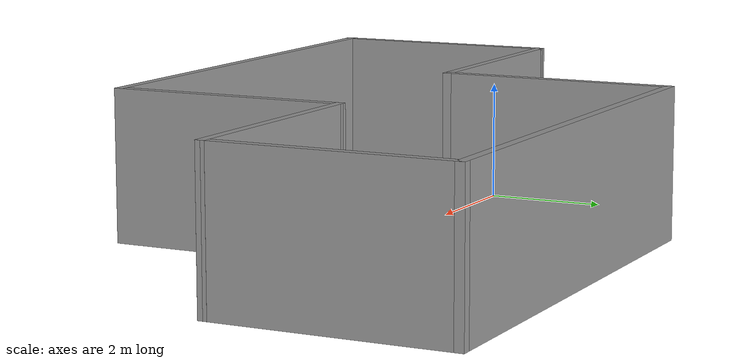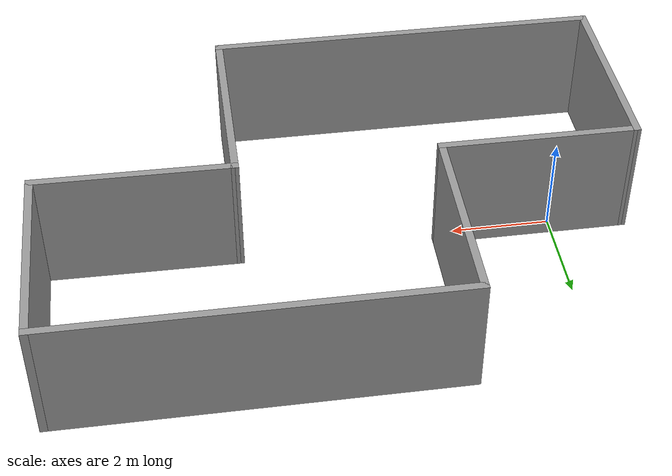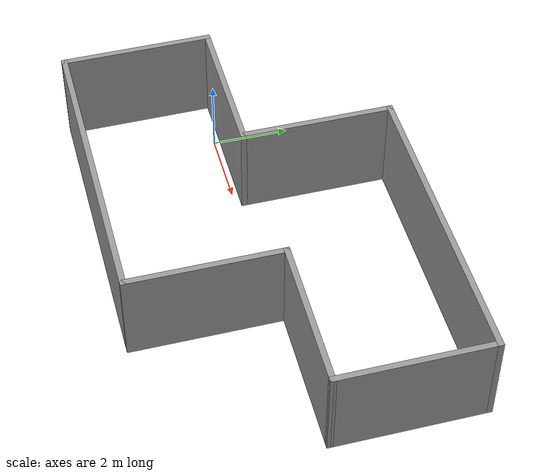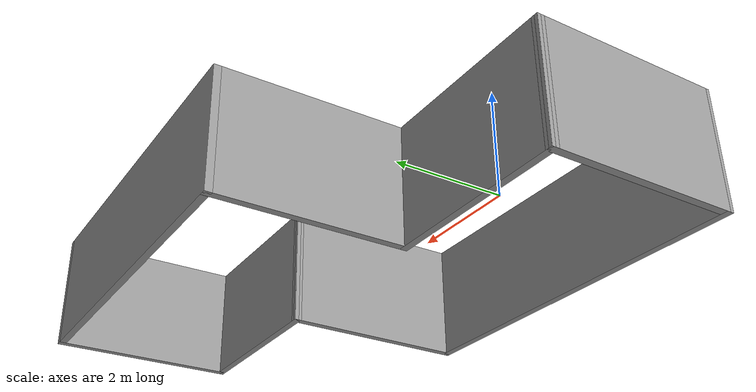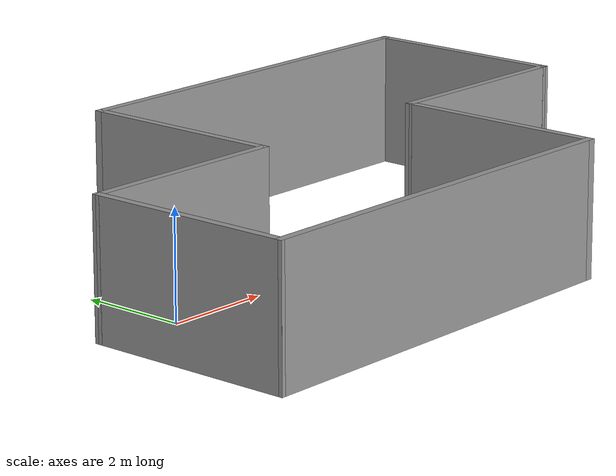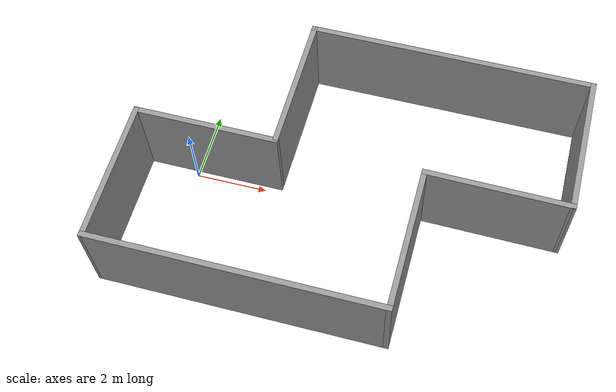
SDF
<?xml version='1.0'?>
<sdf version='1.6'>
  <model name='z_room'>
    <pose frame=''>4.36686 0.219743 0 0 -0 0</pose>
    <link name='Wall_0'>
      <collision name='Wall_0_Collision'>
        <geometry>
          <box>
            <size>8 0.15 2.5</size>
          </box>
        </geometry>
        <pose frame=''>0 0 1.25 0 -0 0</pose>
      </collision>
      <visual name='Wall_0_Visual'>
        <pose frame=''>0 0 1.25 0 -0 0</pose>
        <geometry>
          <box>
            <size>8 0.15 2.5</size>
          </box>
        </geometry>
        <material>
          <script>
            <uri>file://media/materials/scripts/gazebo.material</uri>
            <name>Gazebo/Grey</name>
          </script>
          <ambient>1 1 1 1</ambient>
        </material>
      </visual>
      <pose frame=''>-1.91186 -3.84974 0 0 -0 0</pose>
    </link>
    <link name='Wall_1'>
      <collision name='Wall_1_Collision'>
        <geometry>
          <box>
            <size>4.04023 0.15 2.5</size>
          </box>
        </geometry>
        <pose frame=''>0 0 1.25 0 -0 0</pose>
      </collision>
      <visual name='Wall_1_Visual'>
        <pose frame=''>0 0 1.25 0 -0 0</pose>
        <geometry>
          <box>
            <size>4.04023 0.15 2.5</size>
          </box>
        </geometry>
        <material>
          <script>
            <uri>file://media/materials/scripts/gazebo.material</uri>
            <name>Gazebo/Grey</name>
          </script>
          <ambient>1 1 1 1</ambient>
        </material>
      </visual>
      <pose frame=''>2.01314 -1.90463 0 0 -0 1.5708</pose>
    </link>
    <link name='Wall_10'>
      <collision name='Wall_10_Collision'>
        <geometry>
          <box>
            <size>4.02645 0.15 2.5</size>
          </box>
        </geometry>
        <pose frame=''>0 0 1.25 0 -0 0</pose>
      </collision>
      <visual name='Wall_10_Visual'>
        <pose frame=''>0 0 1.25 0 -0 0</pose>
        <geometry>
          <box>
            <size>4.02645 0.15 2.5</size>
          </box>
        </geometry>
        <material>
          <script>
            <uri>file://media/materials/scripts/gazebo.material</uri>
            <name>Gazebo/Grey</name>
          </script>
          <ambient>1 1 1 1</ambient>
        </material>
      </visual>
      <pose frame=''>-3.92508 0.000257 0 0 -0 3.14159</pose>
    </link>
    <link name='Wall_13'>
      <collision name='Wall_13_Collision'>
        <geometry>
          <box>
            <size>4.00009 0.15 2.5</size>
          </box>
        </geometry>
        <pose frame=''>0 0 1.25 0 -0 0</pose>
      </collision>
      <visual name='Wall_13_Visual'>
        <pose frame=''>0 0 1.25 0 -0 0</pose>
        <geometry>
          <box>
            <size>4.00009 0.15 2.5</size>
          </box>
        </geometry>
        <material>
          <script>
            <uri>file://media/materials/scripts/gazebo.material</uri>
            <name>Gazebo/Grey</name>
          </script>
          <ambient>1 1 1 1</ambient>
        </material>
      </visual>
      <pose frame=''>-5.85008 -1.92474 0 0 0 -1.56393</pose>
    </link>
    <link name='Wall_3'>
      <collision name='Wall_3_Collision'>
        <geometry>
          <box>
            <size>4 0.15 2.5</size>
          </box>
        </geometry>
        <pose frame=''>0 0 1.25 0 -0 0</pose>
      </collision>
      <visual name='Wall_3_Visual'>
        <pose frame=''>0 0 1.25 0 -0 0</pose>
        <geometry>
          <box>
            <size>4 0.15 2.5</size>
          </box>
        </geometry>
        <material>
          <script>
            <uri>file://media/materials/scripts/gazebo.material</uri>
            <name>Gazebo/Grey</name>
          </script>
          <ambient>1 1 1 1</ambient>
        </material>
      </visual>
      <pose frame=''>3.93815 0.02037 0 0 0 -0.010448</pose>
    </link>
    <link name='Wall_7'>
      <collision name='Wall_7_Collision'>
        <geometry>
          <box>
            <size>4 0.15 2.5</size>
          </box>
        </geometry>
        <pose frame=''>0 0 1.25 0 -0 0</pose>
      </collision>
      <visual name='Wall_7_Visual'>
        <pose frame=''>0 0 1.25 0 -0 0</pose>
        <geometry>
          <box>
            <size>4 0.15 2.5</size>
          </box>
        </geometry>
        <material>
          <script>
            <uri>file://media/materials/scripts/gazebo.material</uri>
            <name>Gazebo/Grey</name>
          </script>
          <ambient>1 1 1 1</ambient>
        </material>
      </visual>
      <pose frame=''>5.86314 1.92526 0 0 -0 1.5708</pose>
    </link>
    <link name='Wall_8'>
      <collision name='Wall_8_Collision'>
        <geometry>
          <box>
            <size>8 0.15 2.5</size>
          </box>
        </geometry>
        <pose frame=''>0 0 1.25 0 -0 0</pose>
      </collision>
      <visual name='Wall_8_Visual'>
        <pose frame=''>0 0 1.25 0 -0 0</pose>
        <geometry>
          <box>
            <size>8 0.15 2.5</size>
          </box>
        </geometry>
        <material>
          <script>
            <uri>file://media/materials/scripts/gazebo.material</uri>
            <name>Gazebo/Grey</name>
          </script>
          <ambient>1 1 1 1</ambient>
        </material>
      </visual>
      <pose frame=''>1.93814 3.85026 0 0 -0 3.14159</pose>
    </link>
    <link name='Wall_9'>
      <collision name='Wall_9_Collision'>
        <geometry>
          <box>
            <size>4 0.15 2.5</size>
          </box>
        </geometry>
        <pose frame=''>0 0 1.25 0 -0 0</pose>
      </collision>
      <visual name='Wall_9_Visual'>
        <pose frame=''>0 0 1.25 0 -0 0</pose>
        <geometry>
          <box>
            <size>4 0.15 2.5</size>
          </box>
        </geometry>
        <material>
          <script>
            <uri>file://media/materials/scripts/gazebo.material</uri>
            <name>Gazebo/Grey</name>
          </script>
          <ambient>1 1 1 1</ambient>
        </material>
      </visual>
      <pose frame=''>-1.98686 1.92526 0 0 0 -1.5708</pose>
    </link>
    <static>1</static>
  </model>
</sdf>
